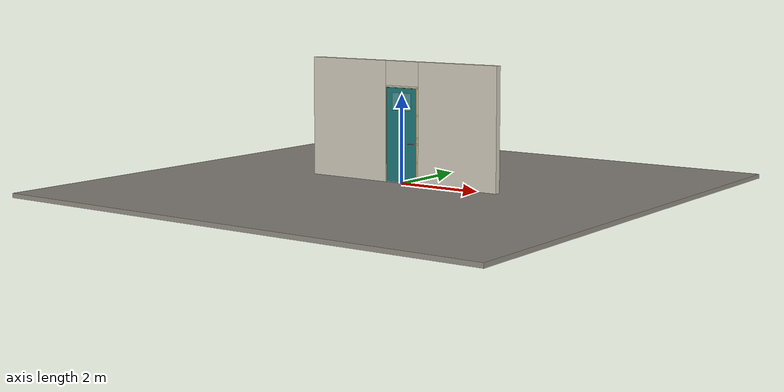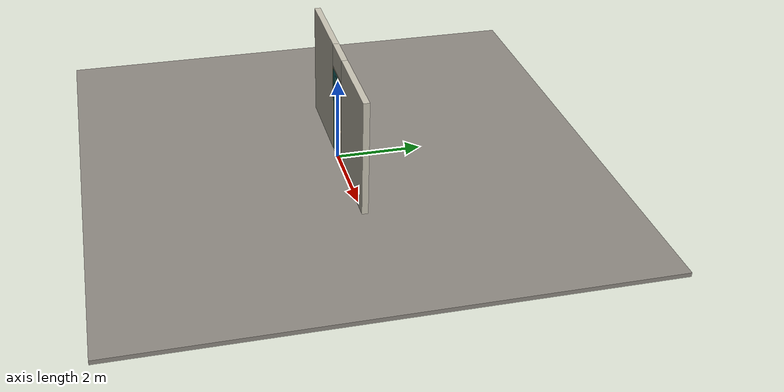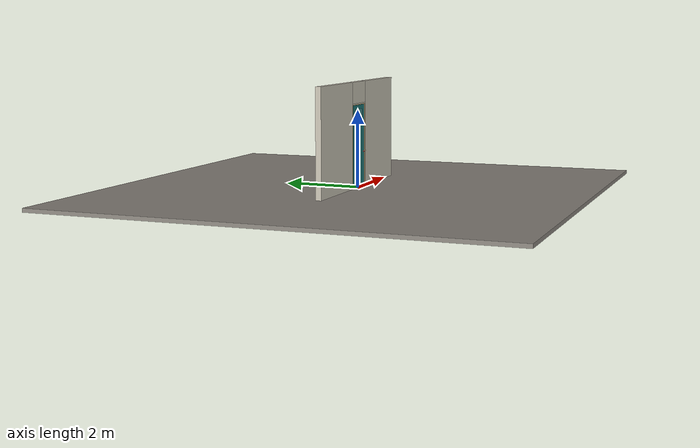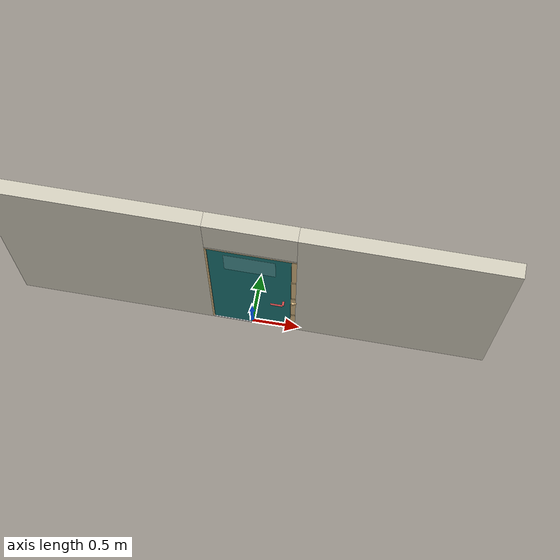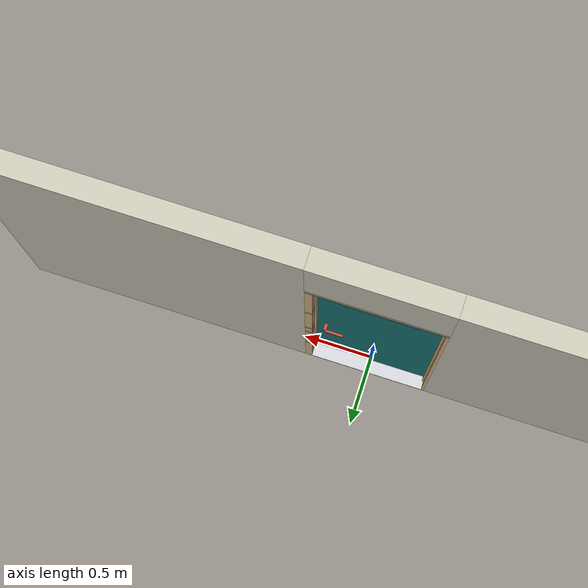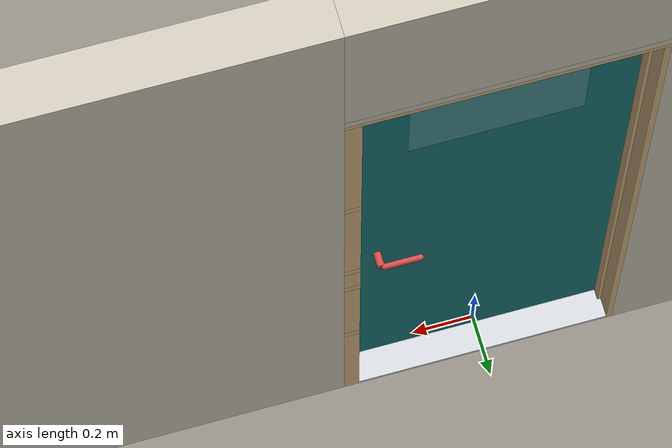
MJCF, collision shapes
<?xml version="1.0" ?>
<mujoco model="db0812_swing_single_minimal">
  <compiler angle="radian" meshdir="../../hardware" texturedir="../../textures" autolimits="true" inertiafromgeom="false"/>
  <option timestep="0.002" integrator="implicitfast" cone="elliptic" impratio="10" noslip_iterations="3">
    <flag multiccd="enable"/>
  </option>
  <size memory="16M"/>
  <default>
    <geom condim="4" solref="0.005 1" solimp="0.95 0.99 0.001"/>
    <joint solreflimit="0.005 1" solimplimit="0.95 0.99 0.001"/>
    <tendon solreflimit="0.005 1"/>
    <equality solref="0.002 1"/>
  </default>
  <visual>
    <headlight ambient="0.4 0.4 0.4" diffuse="0.7 0.7 0.7" specular="0.2 0.2 0.2"/>
    <quality shadowsize="4096"/>
    <map znear="0.01" zfar="60"/>
  </visual>
  <asset>
    <mesh name="lever_f913fc5b7b" file="lever_f913fc5b7b.obj"/>
    <material name="mat_floor" rgba="0.55 0.53 0.5 1" specular="0.2" shininess="0.15" reflectance="0"/>
    <material name="mat_wall" rgba="0.78 0.76 0.7 1" specular="0.2" shininess="0.1" reflectance="0"/>
    <material name="mat_leaf" rgba="0.1 0.45 0.45 1" specular="0.2" shininess="0.46" reflectance="0"/>
    <material name="mat_glass" rgba="0.85 0.92 0.95 0.25" specular="0.2" shininess="0.95" reflectance="0.1"/>
    <material name="mat_hinge" rgba="0.65 0.66 0.68 1" specular="0.74" shininess="0.5" reflectance="0.36"/>
    <material name="mat_op_stainless" rgba="0.75 0.76 0.77 1" specular="0.8" shininess="0.65" reflectance="0.4"/>
    <material name="mat_trim" rgba="0.85 0.66 0.3 1" specular="0.8" shininess="0.75" reflectance="0.4"/>
    <material name="mat_bolt" rgba="0.85 0.66 0.3 1" specular="0.8" shininess="0.75" reflectance="0.4"/>
    <material name="mat_deadbolt" rgba="0.85 0.66 0.3 1" specular="0.8" shininess="0.75" reflectance="0.4"/>
    <material name="mat_frame" rgba="0.82 0.7 0.5 1" specular="0.2" shininess="0.45" reflectance="0"/>
    <material name="mat_threshold" rgba="0.8 0.81 0.83 1" specular="0.8" shininess="0.6" reflectance="0.4"/>
    <material name="mat_kick" rgba="0.75 0.76 0.77 1" specular="0.8" shininess="0.65" reflectance="0.4"/>
    <material name="mat_peephole" rgba="0.85 0.66 0.3 1" specular="0.8" shininess="0.75" reflectance="0.4"/>
    <material name="mat_numbers" rgba="0.05 0.05 0.05 1" specular="0.38" shininess="0.3" reflectance="0.12"/>
    <texture name="skybox" type="skybox" builtin="gradient" rgb1="0.6 0.7 0.85" rgb2="0.9 0.92 0.95" width="256" height="256"/>
  </asset>
  <worldbody>
    <light name="sun" pos="1.5 -2.5 4" dir="-0.3 0.5 -0.8" directional="true" diffuse="0.8 0.8 0.8" specular="0.3 0.3 0.3" castshadow="true"/>
    <light name="fill" pos="-1.5 2.5 3" dir="0.3 -0.5 -0.7" directional="true" diffuse="0.35 0.35 0.4" castshadow="false"/>
    <camera name="robot_view" pos="0 -2.594313 1.812087" xyaxes="1 0 0 0 0.26963 0.962964" fovy="52"/>
    <camera name="far_view" pos="0 2.681312 1.812087" xyaxes="-1 0 0 0 -0.26963 0.962964" fovy="52"/>
    <camera name="iso" pos="2.004737 -2.172262 2.234138" xyaxes="0.741536 0.670913 0 -0.242917 0.268487 0.932151" fovy="46"/>
    <camera name="detail_handle" pos="0.4115 -0.877 1.194" xyaxes="0.97561 0.219512 0 -0.070934 0.315262 0.94635" fovy="38"/>
    <geom name="floor" type="box" size="6 6 0.05" pos="0 0 -0.05" material="mat_floor" group="0" contype="1" conaffinity="1" friction="0.8 0.005 0.0001" density="2400"/>
    <geom name="wall_left" type="box" size="1.03525 0.0725 1.3735" pos="-1.46475 0.0435 1.3735" material="mat_wall" group="0" contype="1" conaffinity="1" friction="0.6 0.005 0.0001" density="800"/>
    <geom name="wall_right" type="box" size="1.02025 0.0725 1.3735" pos="1.47975 0.0435 1.3735" material="mat_wall" group="0" contype="1" conaffinity="1" friction="0.6 0.005 0.0001" density="800"/>
    <geom name="wall_header" type="box" size="0.4445 0.0725 0.2755" pos="0.015 0.0435 2.4715" material="mat_wall" group="0" contype="1" conaffinity="1" friction="0.6 0.005 0.0001" density="800"/>
    <geom name="jamb_hinge" type="box" size="0.0095 0.0725 1.0735" pos="-0.42 0.0435 1.0735" material="mat_frame" group="0" contype="1" conaffinity="1" friction="0.6 0.005 0.0001" density="400"/>
    <geom name="strike_504_wall_n" type="box" size="0.0245 0.05325 0.0155" pos="0.435 0.06275 0.504" material="mat_frame" group="0" contype="1" conaffinity="1" friction="0.6 0.005 0.0001" density="400"/>
    <geom name="strike_504_wall_p" type="box" size="0.0245 0.00975 0.0155" pos="0.435 -0.01925 0.504" material="mat_frame" group="0" contype="1" conaffinity="1" friction="0.6 0.005 0.0001" density="400"/>
    <geom name="strike_504_back" type="box" size="0.0125 0.0095 0.0155" pos="0.447 0 0.504" material="mat_frame" group="0" contype="1" conaffinity="1" friction="0.6 0.005 0.0001" density="400"/>
    <geom name="strike_914_wall_n" type="box" size="0.0245 0.054075 0.0167" pos="0.435 0.061925 0.914" material="mat_frame" group="0" contype="1" conaffinity="1" friction="0.6 0.005 0.0001" density="400"/>
    <geom name="strike_914_wall_p" type="box" size="0.0245 0.008 0.0167" pos="0.435 -0.01585 0.914" material="mat_frame" group="0" contype="1" conaffinity="1" friction="0.6 0.005 0.0001" density="400"/>
    <geom name="strike_914_ramp" type="box" size="0.0245 0.01649 0.0167" pos="0.439636 -0.028673 0.914" quat="0.977148 0 0 0.212558" material="mat_frame" group="0" contype="1" conaffinity="1" friction="0.12 0.005 0.0001" density="400"/>
    <geom name="strike_914_back" type="box" size="0.01615 0.00785 0.0167" pos="0.44335 0 0.914" material="mat_frame" group="0" contype="1" conaffinity="1" friction="0.6 0.005 0.0001" density="400"/>
    <geom name="strike_1054_wall_n" type="box" size="0.0245 0.05325 0.0155" pos="0.435 0.06275 1.054" material="mat_frame" group="0" contype="1" conaffinity="1" friction="0.6 0.005 0.0001" density="400"/>
    <geom name="strike_1054_wall_p" type="box" size="0.0245 0.00975 0.0155" pos="0.435 -0.01925 1.054" material="mat_frame" group="0" contype="1" conaffinity="1" friction="0.6 0.005 0.0001" density="400"/>
    <geom name="strike_1054_back" type="box" size="0.0125 0.0095 0.0155" pos="0.447 0 1.054" material="mat_frame" group="0" contype="1" conaffinity="1" friction="0.6 0.005 0.0001" density="400"/>
    <geom name="strike_1554_wall_n" type="box" size="0.0245 0.05325 0.0155" pos="0.435 0.06275 1.554" material="mat_frame" group="0" contype="1" conaffinity="1" friction="0.6 0.005 0.0001" density="400"/>
    <geom name="strike_1554_wall_p" type="box" size="0.0245 0.00975 0.0155" pos="0.435 -0.01925 1.554" material="mat_frame" group="0" contype="1" conaffinity="1" friction="0.6 0.005 0.0001" density="400"/>
    <geom name="strike_1554_back" type="box" size="0.0125 0.0095 0.0155" pos="0.447 0 1.554" material="mat_frame" group="0" contype="1" conaffinity="1" friction="0.6 0.005 0.0001" density="400"/>
    <geom name="jamb_strike_0" type="box" size="0.0245 0.0725 0.24425" pos="0.435 0.0435 0.24425" material="mat_frame" group="0" contype="1" conaffinity="1" friction="0.6 0.005 0.0001" density="400"/>
    <geom name="jamb_strike_1" type="box" size="0.0245 0.0725 0.1889" pos="0.435 0.0435 0.7084" material="mat_frame" group="0" contype="1" conaffinity="1" friction="0.6 0.005 0.0001" density="400"/>
    <geom name="jamb_strike_2" type="box" size="0.0245 0.0725 0.0539" pos="0.435 0.0435 0.9846" material="mat_frame" group="0" contype="1" conaffinity="1" friction="0.6 0.005 0.0001" density="400"/>
    <geom name="jamb_strike_3" type="box" size="0.0245 0.0725 0.2345" pos="0.435 0.0435 1.304" material="mat_frame" group="0" contype="1" conaffinity="1" friction="0.6 0.005 0.0001" density="400"/>
    <geom name="jamb_strike_4" type="box" size="0.0245 0.0725 0.28875" pos="0.435 0.0435 1.85825" material="mat_frame" group="0" contype="1" conaffinity="1" friction="0.6 0.005 0.0001" density="400"/>
    <geom name="jamb_head" type="box" size="0.4445 0.0725 0.0095" pos="0.015 0.0435 2.1565" material="mat_frame" group="0" contype="1" conaffinity="1" friction="0.6 0.005 0.0001" density="400"/>
    <geom name="head_stud" type="box" size="0.4445 0.0725 0.015" pos="0.015 0.0435 2.181" material="mat_wall" group="0" contype="1" conaffinity="1" friction="0.6 0.005 0.0001" density="500"/>
    <geom name="stop_hinge" type="box" size="0.0055 0.016 1.0735" pos="-0.405 0.0385 1.0735" material="mat_frame" group="0" contype="1" conaffinity="1" friction="0.6 0.005 0.0001" density="400"/>
    <geom name="stop_strike" type="box" size="0.0055 0.016 1.0735" pos="0.405 0.0385 1.0735" material="mat_frame" group="0" contype="1" conaffinity="1" friction="0.6 0.005 0.0001" density="400"/>
    <geom name="stop_head" type="box" size="0.4105 0.016 0.0055" pos="0 0.0385 2.1415" material="mat_frame" group="0" contype="1" conaffinity="1" friction="0.6 0.005 0.0001" density="400"/>
    <geom name="threshold" type="box" size="0.4295 0.0725 0.0065" pos="0 0.0435 0.0065" material="mat_threshold" group="0" contype="1" conaffinity="1" friction="0.5 0.005 0.0001" density="2700"/>
    <site name="approach_point" pos="0 -1.5 0" quat="1 0 0 0" size="0.05" rgba="0.2 0.9 0.2 0.5" group="4"/>
    <site name="goal_point" pos="0 1.5 0" quat="1 0 0 0" size="0.05" rgba="0.2 0.9 0.2 0.5" group="4"/>
    <site name="door_plane_center" pos="0 0 1.0735" quat="1 0 0 0" size="0.02" rgba="0.2 0.9 0.2 0.5" group="4"/>
    <body name="leaf" pos="-0.4105 0 0">
      <inertial pos="0.4095 0 1.080323" mass="29.113052" quat="-0.5 0.5 0.5 0.5" diaginertia="1.607849298 10.972955493 12.571410685"/>
      <joint name="leaf_hinge" type="hinge" axis="0 0 -1" pos="0.003 -0.029 0" limited="true" range="0 1.745329" damping="2.168374" frictionloss="0.353708" stiffness="6.6" springref="-0.409091" armature="0.02"/>
      <geom name="leaf_slab" type="box" size="0.4065 0.022 1.063" pos="0.4095 0 1.08" material="mat_leaf" group="0" contype="1" conaffinity="1" friction="0.4 0.005 0.0001" density="1"/>
      <geom name="leaf_glass_0" type="box" size="0.2532 0.0228 0.196442" pos="0.4095 0 1.840258" material="mat_glass" group="1" contype="0" conaffinity="0" density="1"/>
      <site name="leaf_edge_mid" pos="0.816 0 1.063" quat="1 0 0 0" size="0.02" rgba="0.2 0.9 0.2 0.5" group="4"/>
      <body name="leaf_handle" pos="0.746 0 0.914">
        <inertial pos="-0.0423 0 0" mass="0.712286" quat="0.707107 0 0 -0.707107" diaginertia="0.001444644 0.003449344 0.004855619"/>
        <joint name="leaf_handle_hinge" type="hinge" axis="0 -1 0" limited="true" range="0 0.65" damping="0.225568" frictionloss="0.051863" stiffness="1" springref="-0.503022" armature="0.01"/>
        <geom name="leaf_handle_lever_n" type="mesh" mesh="lever_f913fc5b7b" pos="0 -0.022 0" quat="0.707107 0.707107 0 0" material="mat_op_stainless" group="1" contype="0" conaffinity="0" density="3000"/>
        <geom name="leaf_handle_lever_col_n" type="capsule" size="0.0095 0.0555" pos="-0.065 -0.077 0" quat="0.707107 0 -0.707107 0" material="mat_op_stainless" group="3" contype="1" conaffinity="1" rgba="0.8 0.3 0.3 0.25" friction="0.7 0.01 0.0001" density="3000"/>
        <geom name="leaf_handle_hub_col_n" type="cylinder" size="0.012 0.022" pos="0 -0.052 0" quat="0.707107 -0.707107 0 0" material="mat_op_stainless" group="3" contype="1" conaffinity="1" rgba="0.8 0.3 0.3 0.25" friction="0.6 0.005 0.0001" density="3000"/>
        <geom name="leaf_handle_lever_p" type="mesh" mesh="lever_f913fc5b7b" pos="0 0.022 0" quat="-0.707107 0.707107 0 0" material="mat_op_stainless" group="1" contype="0" conaffinity="0" density="3000"/>
        <geom name="leaf_handle_lever_col_p" type="capsule" size="0.0095 0.0555" pos="-0.065 0.077 0" quat="0.707107 0 -0.707107 0" material="mat_op_stainless" group="3" contype="1" conaffinity="1" rgba="0.8 0.3 0.3 0.25" friction="0.7 0.01 0.0001" density="3000"/>
        <geom name="leaf_handle_hub_col_p" type="cylinder" size="0.012 0.022" pos="0 0.052 0" quat="0.707107 -0.707107 0 0" material="mat_op_stainless" group="3" contype="1" conaffinity="1" rgba="0.8 0.3 0.3 0.25" friction="0.6 0.005 0.0001" density="3000"/>
        <site name="leaf_handle_grip_n" pos="-0.104 -0.077 0" quat="1 0 0 0" size="0.012" rgba="0.2 0.9 0.2 0.5" group="4"/>
        <site name="leaf_handle_grip_p" pos="-0.104 0.077 0" quat="1 0 0 0" size="0.012" rgba="0.2 0.9 0.2 0.5" group="4"/>
      </body>
      <body name="leaf_latch_bolt" pos="0.816 0 0.914">
        <inertial pos="-0.00865 0 0" mass="0.041419" quat="0.92388 -0.382683 0 0" diaginertia="0.000000798 0.000005598 0.000005598"/>
        <joint name="leaf_latch_bolt_slide" type="slide" axis="-1 0 0" limited="true" range="0 0.0127" damping="2" frictionloss="0.3" stiffness="300" springref="-0.008333" armature="0.1"/>
        <geom name="leaf_latch_bolt_capsule" type="capsule" size="0.00635 0.015" pos="-0.00865 0 0" quat="0.707107 0 0.707107 0" material="mat_bolt" group="0" contype="1" conaffinity="1" friction="0.2 0.005 0.0001" density="8500"/>
      </body>
    </body>
  </worldbody>
  <tendon>
    <fixed name="leaf_latch_bolt_coupling" limited="true" range="0 10">
      <joint joint="leaf_latch_bolt_slide" coef="1"/>
      <joint joint="leaf_handle_hinge" coef="-0.02082"/>
    </fixed>
  </tendon>
  <sensor>
    <jointpos name="leaf_hinge_pos" joint="leaf_hinge"/>
    <jointvel name="leaf_hinge_vel" joint="leaf_hinge"/>
    <jointpos name="leaf_handle_hinge_pos" joint="leaf_handle_hinge"/>
    <jointvel name="leaf_handle_hinge_vel" joint="leaf_handle_hinge"/>
    <jointpos name="leaf_latch_bolt_slide_pos" joint="leaf_latch_bolt_slide"/>
    <jointvel name="leaf_latch_bolt_slide_vel" joint="leaf_latch_bolt_slide"/>
  </sensor>
</mujoco>
